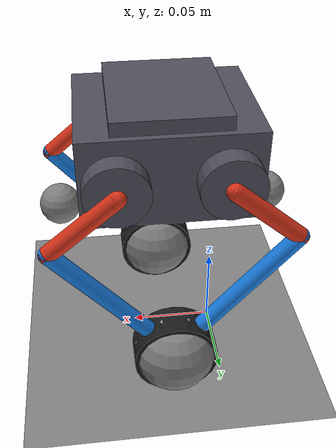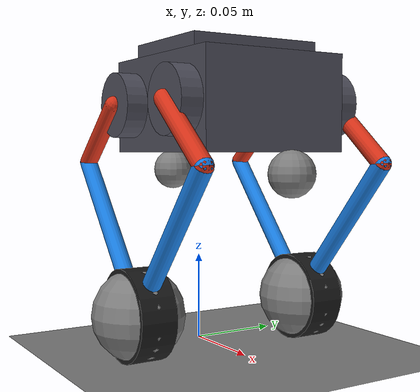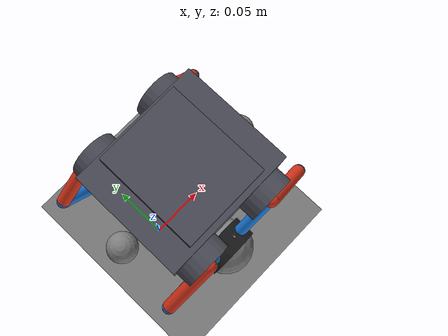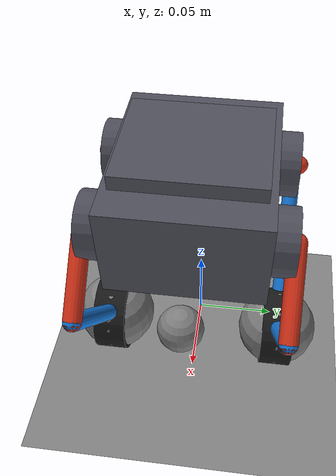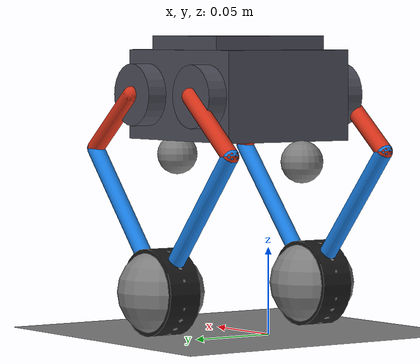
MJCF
<?xml version="1.0" encoding="utf-8"?>
<mujoco model="wheelleg5bar">
    <compiler angle="radian" autolimits="true" />
    <option timestep="0.0005" gravity="0 0 -9.81" wind="0 0 0" integrator="implicitfast"
        density="1.225" viscosity="1.8e-5" />

    <visual>
        <global realtime="1" />
        <quality shadowsize="2048" numslices="16" offsamples="4" />
        <headlight diffuse="1 1 1" specular="0.5 0.5 0.5" active="1" />
    </visual>

    <asset>
        <texture type="skybox" file="../asset/desert.png"
            gridsize="3 4" gridlayout=".U..LFRB.D.." />
        <texture name="plane" type="2d" builtin="checker" rgb1=".1 .1 .1" rgb2=".9 .9 .9"
            width="512" height="512" mark="cross" markrgb=".8 .8 .8" />
        <material name="plane" reflectance="0.3" texture="plane" texrepeat="1 1" texuniform="true" />
        <material name="chassis" rgba="0.3 0.3 0.35 1" />
        <material name="active" rgba="0.85 0.2 0.1 1" />
        <material name="coupler" rgba="0.1 0.5 0.9 1" />
        <material name="wheel" rgba="0.1 0.1 0.1 1" />
    </asset>

    <worldbody>
        <camera name="demo" mode="trackcom" pos="0 -0.9 0.3" xyaxes="1 0 0 0 0.32 0.95"/>
        <geom name="floor" type="plane" pos="0 0 0" size="5 5 0.05" material="plane"
            condim="3" friction="2.0 0.05 0.0001" />
        <light directional="true" ambient=".05 .05 .05" pos="30 30 30" dir="0 -2 -1"
            diffuse=".6 .6 .6" specular=".4 .4 .4" />

        <!-- 车身: 载体罩挂在电机轴下方(电池/控制盒在下, 降低质心), 原点 = 电机轴平面 -->
        <body name="chassis" pos="0 0 0.137">
            <freejoint />
            <geom name="chassis_box" type="box" pos="0.03 0 0" size="0.05 0.042 0.026"
                mass="0.62" material="chassis" contype="0" conaffinity="0" />
            <geom name="chassis_lid" type="box" pos="0.03 0 0.03" size="0.032 0.038 0.004"
                mass="0.04" material="chassis" contype="0" conaffinity="0" />

            <!-- IMU 位于箱体中间 (箱体质心, x=0.03 即髋轴中点) -->
            <site name="body_imu" pos="0.03 0 0" size="0.02" rgba="1 0 1 1" />

            <!-- 髋关节电机壳体 (装于箱体侧面, 有厚度; 髋轴在电机外端面 ±0.048) -->
            <geom name="motor_alphaL" type="cylinder" size="0.018 0.006" euler="1.5708 0 0"
                pos="0 -0.048 0" mass="0.005" rgba="0.3 0.3 0.35 1"
                contype="0" conaffinity="0" />
            <geom name="motor_betaL" type="cylinder" size="0.018 0.006" euler="1.5708 0 0"
                pos="0.06 -0.048 0" mass="0.005" rgba="0.3 0.3 0.35 1"
                contype="0" conaffinity="0" />
            <geom name="motor_alphaR" type="cylinder" size="0.018 0.006" euler="1.5708 0 0"
                pos="0 0.048 0" mass="0.005" rgba="0.3 0.3 0.35 1"
                contype="0" conaffinity="0" />
            <geom name="motor_betaR" type="cylinder" size="0.018 0.006" euler="1.5708 0 0"
                pos="0.06 0.048 0" mass="0.005" rgba="0.3 0.3 0.35 1"
                contype="0" conaffinity="0" />

            <!-- ============ L腿: A链 = 髋电机alphaL -> 大腿 -> 被动膝B -> 小腿 -> 轮毂(轮轴铰) ============ -->
            <body name="legL" pos="0 -0.054 0">
                <joint name="alphaL" type="hinge" axis="0 1 0" pos="0 0 0"
                    damping="0.01" armature="1e-5" limited="true" range="-1.5 1.5" />
                <geom name="thighA_L" type="capsule" fromto="0 0 0 -0.0383 0 -0.0321" size="0.005"
                    mass="0.016" material="active" contype="0" conaffinity="0" />
                <body name="kneeA_L" pos="-0.0383 0 -0.0321">
                    <!-- 被动膝 B: 铰链, 角度由五连杆闭环几何决定 -->
                    <joint name="passA_L" type="hinge" axis="0 1 0" pos="0 0 0"
                        damping="0.01" armature="1e-5" limited="true" range="-2.5 2.5" />
                    <geom name="shankA_L" type="capsule" fromto="0 0 0 0.0683 0 -0.0798" size="0.005"
                        mass="0.016" material="coupler" contype="0" conaffinity="0" />
                    <!-- 轮毂挂在 A 链末端: 轮轴铰 (wheel1) 即车轮自转轴 -->
                    <body name="wheelL" pos="0.0683 0 -0.0798">
                        <joint name="wheel1" type="hinge" axis="0 1 0" pos="0 0 0"
                            damping="0.005" armature="1.2e-4" />
                        <!-- 碰撞用球体 (圆柱-平面接触在 MuJoCo 中会穿透下沉), 视觉用圆柱 -->
                        <geom name="wheel_collide_L" type="sphere" size="0.025" pos="0 0 0"
                            mass="0.10" contype="1" conaffinity="1"
                            friction="2.0 0.05 0.0001" solref="0.003 2" solimp="0.9 0.95 0.001" />
                        <geom name="wheel_geom_L" type="cylinder" size="0.025 0.01" euler="1.5708 0 0"
                            mass="0.0" material="wheel" contype="0" conaffinity="0" />
                        <site name="wheel_contact_L" pos="0 0 0" size="0.01" rgba="0 1 0 0.5" />
                        <site name="wheel_axle_L" pos="0 0 0" size="0.012"
                            rgba="0.9 0.9 0 0.8" />
                    </body>
                </body>
            </body>

            <!-- ============ L腿: B链 = 髋电机betaL -> 大腿 -> 被动膝D -> 小腿 -> 轮心(connect闭环) ============ -->
            <body name="legL_D" pos="0.06 -0.054 0">
                <joint name="betaL" type="hinge" axis="0 1 0" pos="0 0 0"
                    damping="0.01" armature="1e-5" limited="true" range="-1.5 1.5" />
                <geom name="thighB_L" type="capsule" fromto="0 0 0 0.0383 0 -0.0321" size="0.005"
                    mass="0.016" material="active" contype="0" conaffinity="0" />
                <body name="kneeB_L" pos="0.0383 0 -0.0321">
                    <!-- 被动膝 D: 铰链 -->
                    <joint name="passC_L" type="hinge" axis="0 1 0" pos="0 0 0"
                        damping="0.01" armature="1e-5" limited="true" range="-2.5 2.5" />
                    <geom name="shankB_L" type="capsule" fromto="0 0 0 -0.0683 0 -0.0798" size="0.005"
                        mass="0.016" material="coupler" contype="0" conaffinity="0" />
                    <site name="couplerB_L_end" pos="-0.0683 0 -0.0798" size="0.01"
                        rgba="0.9 0.9 0 0.8" />
                </body>
            </body>

            <!-- ============ R腿: A链 = 髋电机alphaR -> 大腿 -> 被动膝B -> 小腿 -> 轮毂 ============ -->
            <body name="legR" pos="0 0.054 0">
                <joint name="alphaR" type="hinge" axis="0 1 0" pos="0 0 0"
                    damping="0.01" armature="1e-5" limited="true" range="-1.5 1.5" />
                <geom name="thighA_R" type="capsule" fromto="0 0 0 -0.0383 0 -0.0321" size="0.005"
                    mass="0.016" material="active" contype="0" conaffinity="0" />
                <body name="kneeA_R" pos="-0.0383 0 -0.0321">
                    <joint name="passA_R" type="hinge" axis="0 1 0" pos="0 0 0"
                        damping="0.01" armature="1e-5" limited="true" range="-2.5 2.5" />
                    <geom name="shankA_R" type="capsule" fromto="0 0 0 0.0683 0 -0.0798" size="0.005"
                        mass="0.016" material="coupler" contype="0" conaffinity="0" />
                    <body name="wheelR" pos="0.0683 0 -0.0798">
                        <joint name="wheel2" type="hinge" axis="0 1 0" pos="0 0 0"
                            damping="0.005" armature="1.2e-4" />
                        <geom name="wheel_collide_R" type="sphere" size="0.025" pos="0 0 0"
                            mass="0.10" contype="1" conaffinity="1"
                            friction="2.0 0.05 0.0001" solref="0.003 2" solimp="0.9 0.95 0.001" />
                        <geom name="wheel_geom_R" type="cylinder" size="0.025 0.01" euler="1.5708 0 0"
                            mass="0.0" material="wheel" contype="0" conaffinity="0" />
                        <site name="wheel_contact_R" pos="0 0 0" size="0.01" rgba="0 1 0 0.5" />
                        <site name="wheel_axle_R" pos="0 0 0" size="0.012"
                            rgba="0.9 0.9 0 0.8" />
                    </body>
                </body>
            </body>

            <!-- ============ R腿: B链 = 髋电机betaR -> 大腿 -> 被动膝D -> 小腿 -> 轮心 ============ -->
            <body name="legR_D" pos="0.06 0.054 0">
                <joint name="betaR" type="hinge" axis="0 1 0" pos="0 0 0"
                    damping="0.01" armature="1e-5" limited="true" range="-1.5 1.5" />
                <geom name="thighB_R" type="capsule" fromto="0 0 0 0.0383 0 -0.0321" size="0.005"
                    mass="0.016" material="active" contype="0" conaffinity="0" />
                <body name="kneeB_R" pos="0.0383 0 -0.0321">
                    <joint name="passC_R" type="hinge" axis="0 1 0" pos="0 0 0"
                        damping="0.01" armature="1e-5" limited="true" range="-2.5 2.5" />
                    <geom name="shankB_R" type="capsule" fromto="0 0 0 -0.0683 0 -0.0798" size="0.005"
                        mass="0.016" material="coupler" contype="0" conaffinity="0" />
                    <site name="couplerB_R_end" pos="-0.0683 0 -0.0798" size="0.01"
                        rgba="0.9 0.9 0 0.8" />
                </body>
            </body>

            <!-- 支承小轮(前后各一, 安全/视觉件): 抬升至任何工作腿长都不触地, 纯双轮平衡 -->
            <geom name="caster_front" type="sphere" size="0.012" pos="0.092 0 -0.0367"
                mass="0.005" rgba="0.5 0.5 0.5 1" contype="1" conaffinity="1"
                friction="0.8 0.05 0.001" solref="0.01 1" solimp="0.8 0.9 0.001" />
            <geom name="caster_back" type="sphere" size="0.012" pos="-0.032 0 -0.0367"
                mass="0.005" rgba="0.5 0.5 0.5 1" contype="1" conaffinity="1"
                friction="0.8 0.05 0.001" solref="0.01 1" solimp="0.8 0.9 0.001" />
        </body>
    </worldbody>

    <equality>
        <!-- 五连杆闭环: B链小腿末端约束到轮毂轮轴 (点重合, 3 自由度约束) -->
        <connect name="l_loop" site1="couplerB_L_end" site2="wheel_axle_L"
            solref="0.002 1" solimp="0.95 0.99 0.001" />
        <connect name="r_loop" site1="couplerB_R_end" site2="wheel_axle_R"
            solref="0.002 1" solimp="0.95 0.99 0.001" />
    </equality>

    <actuator>
        <!-- 4 个髋关节电机: 力矩驱动 (VMC 五连杆映射输出, 参照 balance-simulation) -->
        <motor name="motor_alphaL" joint="alphaL" gear="1" ctrllimited="true" ctrlrange="-3.0 3.0" />
        <motor name="motor_betaL"  joint="betaL"  gear="1" ctrllimited="true" ctrlrange="-3.0 3.0" />
        <motor name="motor_alphaR" joint="alphaR" gear="1" ctrllimited="true" ctrlrange="-3.0 3.0" />
        <motor name="motor_betaR"  joint="betaR"  gear="1" ctrllimited="true" ctrlrange="-3.0 3.0" />
        <!-- 2 个轮毂电机 -->
        <motor name="motor_wheelL" joint="wheel1" gear="1" ctrllimited="true" ctrlrange="-1.0 1.0" />
        <motor name="motor_wheelR" joint="wheel2" gear="1" ctrllimited="true" ctrlrange="-1.0 1.0" />
    </actuator>

    <sensor>
        <!-- 机身 IMU -->
        <framequat name="body_orientation" objtype="site" objname="body_imu" />
        <gyro name="body_gyro" site="body_imu" />
        <accelerometer name="body_accel" site="body_imu" />
        <!-- 腿关节 -->
        <jointpos name="alpha_L" joint="alphaL" />
        <jointpos name="beta_L" joint="betaL" />
        <jointpos name="alpha_R" joint="alphaR" />
        <jointpos name="beta_R" joint="betaR" />
        <!-- 被动膝 (监测用) -->
        <jointpos name="passA_L_s" joint="passA_L" />
        <jointpos name="passC_L_s" joint="passC_L" />
        <jointpos name="passA_R_s" joint="passA_R" />
        <jointpos name="passC_R_s" joint="passC_R" />
        <!-- 轮子 -->
        <jointpos name="wheel_joint_angle1" joint="wheel1" />
        <jointpos name="wheel_joint_angle2" joint="wheel2" />
        <jointvel name="wheel_joint_speed1" joint="wheel1" />
        <jointvel name="wheel_joint_speed2" joint="wheel2" />
        <!-- 轮地反力 -->
        <force name="wheel1_ground_force" site="wheel_contact_L" />
        <force name="wheel2_ground_force" site="wheel_contact_R" />
    </sensor>

    <keyframe>
        <!-- 站立位形: 所有关节角 0 (= 站姿, 五连杆闭环精确闭合), 轮心离地 R=0.025m -->
        <key name="stand" qpos="0 0 0.1369 1 0 0 0  0 0 0 0 0 0 0 0 0 0" />
        <!-- 蹲姿: leg_len=0.100 (五连杆逆解: aL=+0.177527 bL=-0.177527 膝A=-0.242895 膝C=+0.242895),
             支承轮+大轮 4 点触地 (机身高 0.125m)
             qpos 顺序: free(7) + aL pA w1 bL pC aR pA_R w2 bR pC_R -->
        <key name="crouch" qpos="0 0 0.125 1 0 0 0  0.177527 -0.242895 0 -0.177527 0.242895  0.177527 -0.242895 0 -0.177527 0.242895" />
    </keyframe>
</mujoco>
